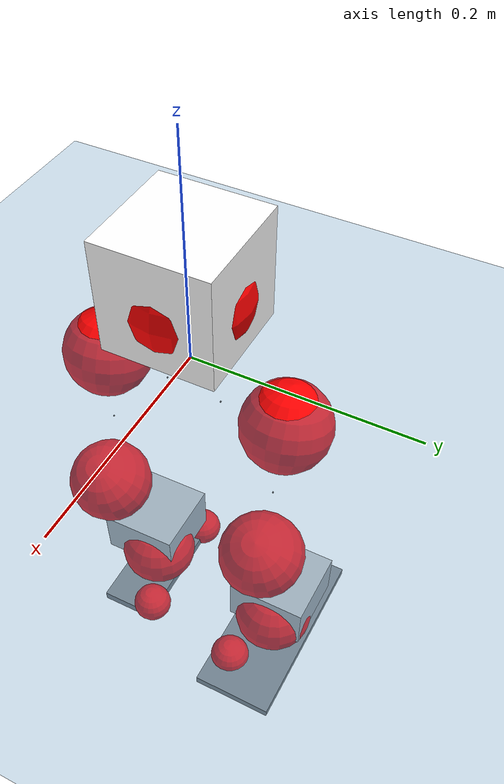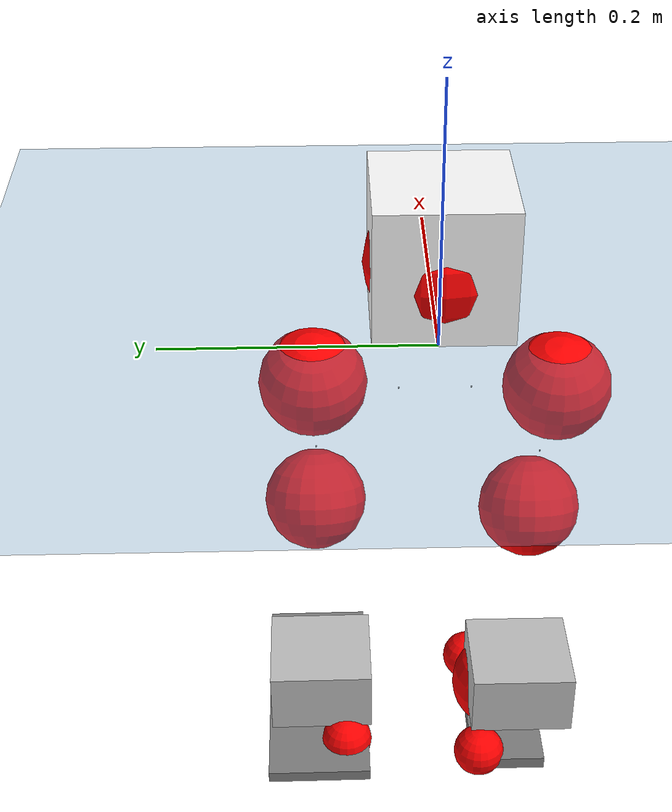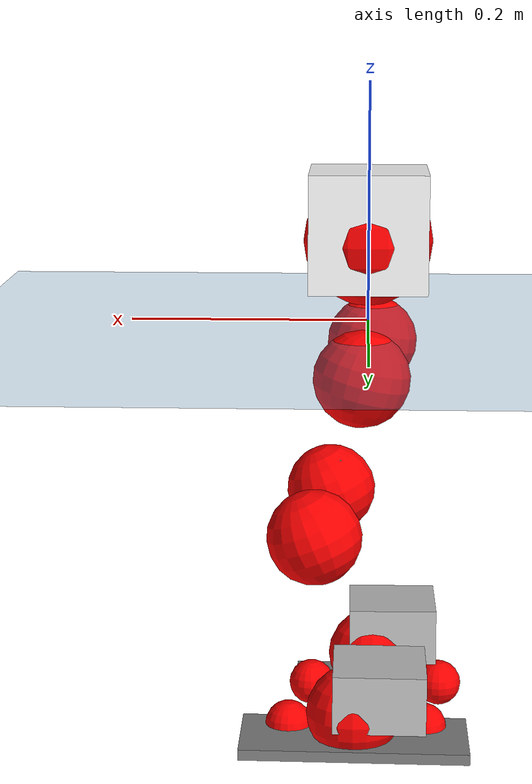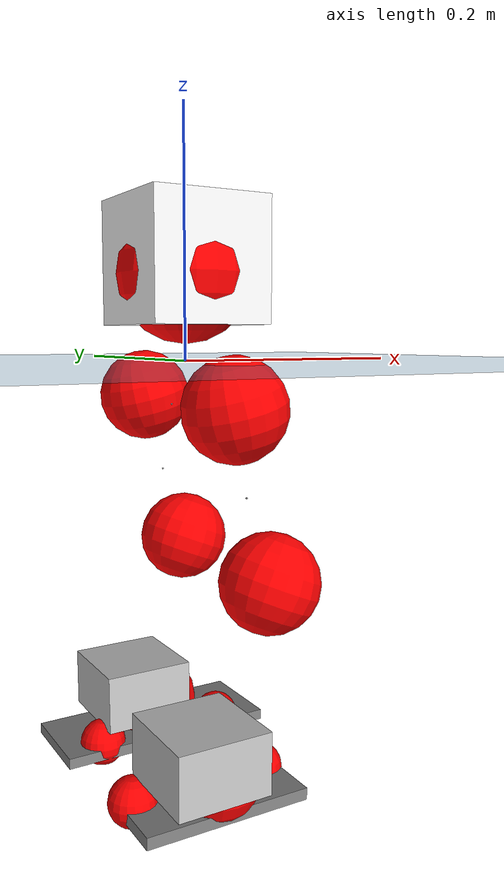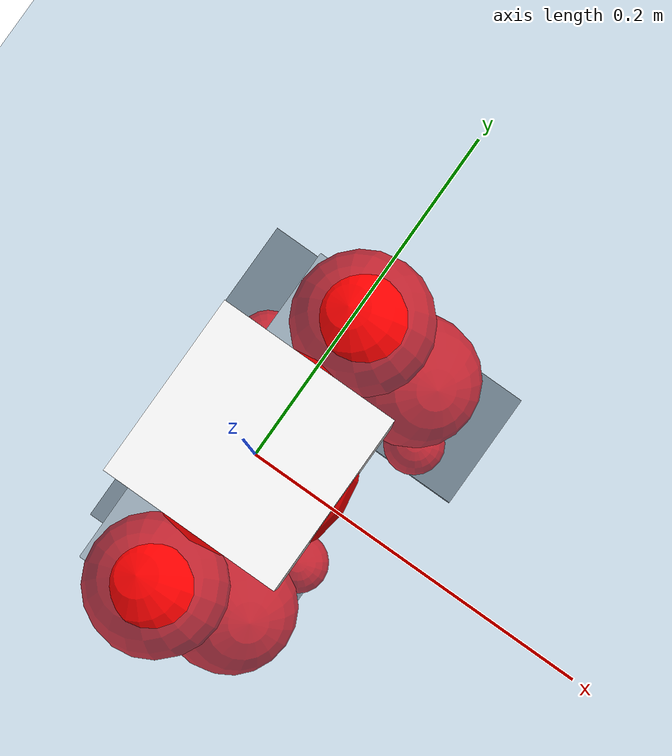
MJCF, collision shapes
<mujoco model="pi_12dof_release_v1">
  <compiler angle="radian" assetdir="assets" balanceinertia="true" inertiafromgeom="false"/>

  <option timestep="0.005" density="1.2" viscosity="2e-05"/>

  <size nkey="1"/>

  <visual>
    <quality shadowsize="8192"/>
    <map shadowclip="0.5"/>
  </visual>

  <default>
    <default class="/">
      <joint armature="0.01" damping="0.01" frictionloss="0.01"/>
      <geom contype="0" conaffinity="0" group="1" solref="-1000 -80"/>
      <site size="0.01 0.005 0.005" group="5"/>
      <general forcelimited="true" biastype="affine" gainprm="20" biasprm="0 -20 -0.5"/>
      <default class="foot">
        <geom size="0.0845 0.036 0.005" type="box" condim="6" group="4" priority="1" friction="0.9 0.2 0.2" solimp="0.015 1 0.005"/>
      </default>
      <default class="reward_collision_sphere">
        <geom group="5" rgba="1 0 0 1"/>
      </default>
    </default>
  </default>

  <asset>
    <texture type="skybox" colorspace="auto" name="//unnamed_texture_0" builtin="gradient" rgb1="0.95 0.95 0.95" rgb2="0.95 0.95 0.95" width="100" height="600"/>
    <texture type="2d" colorspace="auto" name="texplane" builtin="checker" rgb1="0.345 0.575 0.748" rgb2="0.345 0.575 0.748" markrgb="1 1 1" width="512" height="512"/>
    <material name="MatPlane" class="/" texture="texplane" texuniform="true" texrepeat="2 2" specular="0.9"/>
    <mesh name="baselink_1" class="/" file="baselink_1.STL"/>
    <mesh name="r_hip_pitch_link" class="/" file="r_hip_pitch_link.STL"/>
    <mesh name="r_hip_roll_link" class="/" file="r_hip_roll_link.STL"/>
    <mesh name="r_thigh_link" class="/" file="r_thigh_link.STL"/>
    <mesh name="r_calf_link" class="/" file="r_calf_link.STL"/>
    <mesh name="r_ankle_pitch_link" class="/" file="r_ankle_pitch_link.STL"/>
    <mesh name="r_ankle_roll_link" class="/" file="r_ankle_roll_link.STL"/>
    <mesh name="l_hip_pitch_link" class="/" file="l_hip_pitch_link.STL"/>
    <mesh name="l_hip_roll_link" class="/" file="l_hip_roll_link.STL"/>
    <mesh name="l_thigh_link" class="/" file="l_thigh_link.STL"/>
    <mesh name="l_calf_link" class="/" file="l_calf_link.STL"/>
    <mesh name="l_ankle_pitch_link" class="/" file="l_ankle_pitch_link.STL"/>
    <mesh name="l_ankle_roll_link" class="/" file="l_ankle_roll_link.STL"/>
  </asset>

  <worldbody>
    <geom name="floor" class="/" size="100 100 0.125" type="plane" group="0" material="MatPlane"/>
    <light name="toplight_shadow" class="/" pos="0 0 5" dir="0.0990148 0.0990148 -0.990148" type="directional" ambient="0.04 0.04 0.04" diffuse="0.55 0.55 0.55" specular="0.12 0.12 0.12"/>
    <light name="toplight_fill" class="/" pos="0 0 5" dir="0.0990148 0.0990148 -0.990148" type="directional" castshadow="false" ambient="0.04 0.04 0.04" diffuse="0.3 0.3 0.3" specular="0.08 0.08 0.08"/>
    <body name="trunk" pos="0.000426631 0.000275139 -0.0023627" quat="1 -4.8006e-05 -0.00010967 -0.000108582">
      <inertial pos="0.00158243 0.00414234 0.0399661" quat="0.693129 0.0117782 0.0108277 0.720636" mass="2.14269" diaginertia="0.00457078 0.0163433 0.00431867"/>
      <joint name="//unnamed_joint_0" type="free"/>
      <geom name="//unnamed_geom_1" class="/" type="mesh" density="0" rgba="1 1 1 1" mesh="baselink_1"/>
      <geom name="//unnamed_geom_2" class="/" size="0.0492938 0.0492938 0.0492938" pos="0 0 0.0801629" type="box" rgba="1 1 1 1"/>
      <geom name="//unnamed_geom_3" class="reward_collision_sphere" size="0.0542232" pos="0 0 0.0701425"/>
      <site name="imu" class="/" pos="-0.00846509 0.00453121 0.00446446" size="0.00985876"/>
      <camera name="track" class="/" pos="0 -2.22973 0" quat="0.707107 0.707107 0 0" mode="trackcom"/>
      <camera name="ego_camera" class="/" pos="0.0630546 0 0.180366" quat="-0.5 -0.5 0.5 0.5"/>
      <body name="r_hip_pitch_link" pos="-0.00150722 -0.0248499 -0.0321605" quat="0.992135 0.00049149 -0.125174 0.000148929">
        <inertial pos="0.000594389 -0.0599041 0.00213671" quat="-0.0281534 0.724816 -0.0279712 0.687798" mass="0.365548" diaginertia="4.63789e-05 0.000170949 8.58181e-05"/>
        <joint name="r_hip_pitch_joint" class="/" pos="0 0 0" axis="0.0059346 -0.999843 -0.0166805" stiffness="0.0100671" range="-1.74436 1.26206" armature="0.00916803" damping="0" frictionloss="0.00801439"/>
        <geom name="//unnamed_geom_4" class="/" type="mesh" density="0" rgba="0.75294 0.75294 0.75294 1" mesh="r_hip_pitch_link"/>
        <geom name="//unnamed_geom_5" class="/" size="0.000492938 0.000492938 0.000492938" type="box" rgba="0.75294 0.75294 0.75294 1"/>
        <body name="r_hip_roll_link" pos="-0.00262829 -0.0614951 0.00255095" quat="0.999997 0.00175849 0.00184669 -7.49613e-05">
          <inertial pos="0.0023317 -0.00616974 -0.0657143" quat="0.707844 -0.0831058 -0.0902518 0.695633" mass="0.373448" diaginertia="0.000144115 0.00044849 0.000127948"/>
          <joint name="r_hip_roll_joint" class="/" pos="0 0 0" axis="-0.999988 -0.00405178 -0.0027749" range="-0.133399 0.484127" armature="0.00900045" damping="0" frictionloss="0.00904183"/>
          <geom name="//unnamed_geom_6" class="/" type="mesh" density="0" rgba="0.75294 0.75294 0.75294 1" mesh="r_hip_roll_link"/>
          <geom name="//unnamed_geom_7" class="/" size="0.000492938 0.000492938 0.000492938" type="box" rgba="0.75294 0.75294 0.75294 1"/>
          <geom name="//unnamed_geom_8" class="reward_collision_sphere" size="0.039435"/>
          <body name="r_thigh_link" pos="-0.00296543 0.00627987 -0.0676069" quat="0.999999 0.00086853 0.000202545 0.00109153">
            <inertial pos="0.00342926 0.001508 -0.0459806" quat="0.735522 0.677421 -0.0086844 0.00570554" mass="0.110869" diaginertia="5.2464e-05 0.000155517 5.72075e-05"/>
            <joint name="r_thigh_joint" class="/" pos="0 0 0" axis="-0.0132092 0.0046772 -0.999902" stiffness="0.0156651" range="-0.213902 0.679824" armature="0.00870948" damping="0.0293946" frictionloss="0.00780288"/>
            <geom name="//unnamed_geom_9" class="/" type="mesh" density="0" rgba="0.75294 0.75294 0.75294 1" mesh="r_thigh_link"/>
            <geom name="//unnamed_geom_10" class="/" size="0.000492938 0.000492938 0.000492938" type="box" rgba="0.75294 0.75294 0.75294 1"/>
            <body name="r_calf_link" pos="0.00469334 0.0015088 -0.0711817" quat="0.947343 0.000343635 0.320221 0.000648885">
              <inertial pos="-0.00365052 0.00100953 -0.0710979" quat="0.999936 0.00657785 0.00672287 -0.00624467" mass="0.757549" diaginertia="0.00148671 0.00602109 0.000180558"/>
              <joint name="r_calf_joint" class="/" pos="0 0 0" axis="0.0245914 -0.999686 0.00474039" stiffness="0.00546194" range="-1.67002 0.599942" armature="0.00988684" damping="0" frictionloss="0.00819187"/>
              <geom name="//unnamed_geom_11" class="/" type="mesh" density="0" rgba="0.75294 0.75294 0.75294 1" mesh="r_calf_link"/>
              <geom name="//unnamed_geom_12" class="/" size="0.000492938 0.000492938 0.000492938" type="box" rgba="0.75294 0.75294 0.75294 1"/>
              <geom name="//unnamed_geom_13" class="reward_collision_sphere" size="0.039435"/>
              <body name="r_ankle_pitch_link" pos="-0.00188943 0.00715623 -0.137686" quat="0.98003 -0.000172663 -0.19885 -3.98987e-05">
                <inertial pos="0.00486204 0.00400216 -0.00375081" quat="0.0081351 0.709826 -0.0103096 0.704254" mass="0.174615" diaginertia="0.000130367 0.000384435 0.000121824"/>
                <joint name="r_ankle_pitch_joint" class="/" pos="0 0 0" axis="0.012531 -0.999911 0.00449565" range="-1.29103 0.573495" armature="0.00882919" damping="0.0132197" frictionloss="0.00839319"/>
                <geom name="//unnamed_geom_14" class="/" type="mesh" density="0" rgba="0.75294 0.75294 0.75294 1" mesh="r_ankle_pitch_link"/>
                <geom name="//unnamed_geom_15" class="/" size="0.0384492 0.039435 0.0246469" type="box" rgba="0.75294 0.75294 0.75294 1"/>
                <body name="r_ankle_roll_link" pos="0.0597263 0.0107112 -0.00329041" quat="0.999999 -0.000414264 0.00087099 -0.000435941">
                  <inertial pos="-0.0204355 0.00013268 -0.0133986" quat="0.563537 0.435936 0.430502 0.554124" mass="0.465425" diaginertia="0.000435452 0.00165436 0.000267658"/>
                  <joint name="r_ankle_roll_joint" class="/" pos="0 0 0" axis="-0.999563 0.0246138 -0.0163474" range="-0.251708 0.118394" armature="0.00907514" damping="0.00458007" frictionloss="0.0110134"/>
                  <geom name="//unnamed_geom_16" class="/" type="mesh" density="0" rgba="0.75294 0.75294 0.75294 1" mesh="r_ankle_roll_link"/>
                  <geom name="//unnamed_geom_17" class="/" type="mesh" rgba="0.75294 0.75294 0.75294 1" mesh="r_ankle_roll_link"/>
                  <geom name="right_foot" class="foot" size="0.0694658 0.0283759 0.00482842" pos="-0.0428771 0 -0.0440896"/>
                  <geom name="//unnamed_geom_19" class="reward_collision_sphere" size="0.039435" pos="-0.0420364 0 -0.0200407"/>
                  <geom name="//unnamed_geom_20" class="reward_collision_sphere" size="0.0197175" pos="0.0126109 0.0222973 -0.0400814"/>
                  <geom name="//unnamed_geom_21" class="reward_collision_sphere" size="0.0197175" pos="-0.100887 0.0222973 -0.0400814"/>
                  <site name="right_foot" class="foot" pos="-0.0428771 0 -0.0440896" size="0.00985876"/>
                </body>
              </body>
            </body>
          </body>
        </body>
      </body>
      <body name="l_hip_pitch_link" pos="0.00108618 0.0275757 -0.0339851" quat="0.992179 -6.02581e-06 -0.124826 0.000368192">
        <inertial pos="0.00353901 0.0574248 0.000217023" quat="-0.0452363 0.712627 0.0323318 0.699336" mass="0.387787" diaginertia="5.09659e-05 0.000173894 0.000100064"/>
        <joint name="l_hip_pitch_joint" class="/" pos="0 0 0" axis="0.00628231 0.999959 0.00654565" range="-1.19875 1.70173" armature="0.00968311" damping="0.0180922" frictionloss="0.0102206"/>
        <geom name="//unnamed_geom_22" class="/" type="mesh" density="0" rgba="0.75294 0.75294 0.75294 1" mesh="l_hip_pitch_link"/>
        <geom name="//unnamed_geom_23" class="/" size="0.000492938 0.000492938 0.000492938" type="box" rgba="0.75294 0.75294 0.75294 1"/>
        <body name="l_hip_roll_link" pos="0.00437651 0.0617892 0.00342683" quat="0.999998 -0.00167277 -0.000294379 -0.000731615">
          <inertial pos="0.00401917 -0.00535425 -0.0595029" quat="0.702897 -0.0765068 -0.0740078 0.703281" mass="0.392164" diaginertia="0.0001382 0.000480825 0.000124798"/>
          <joint name="l_hip_roll_joint" class="/" pos="0 0 0" axis="-0.999993 -0.00211685 -0.00323578" stiffness="0.00569872" range="-0.499042 0.149842" armature="0.00762964" damping="0.000275735" frictionloss="0.00949639"/>
          <geom name="//unnamed_geom_24" class="/" type="mesh" density="0" rgba="0.75294 0.75294 0.75294 1" mesh="l_hip_roll_link"/>
          <geom name="//unnamed_geom_25" class="/" size="0.000492938 0.000492938 0.000492938" type="box" rgba="0.75294 0.75294 0.75294 1"/>
          <geom name="//unnamed_geom_26" class="reward_collision_sphere" size="0.039435"/>
          <body name="l_thigh_link" pos="-0.00100718 -0.00138378 -0.0701166" quat="1 -9.62203e-05 -0.000102872 0.000373802">
            <inertial pos="0.000773812 -0.00329769 -0.051126" quat="0.675987 0.736893 0.00473556 -0.00262443" mass="0.107832" diaginertia="5.45354e-05 0.0001698 6.13163e-05"/>
            <joint name="l_thigh_joint" class="/" pos="0 0 0" axis="-0.000846613 0.00450957 -0.999989" range="-0.561223 0.336092" armature="0.00941228" damping="0.0135077" frictionloss="0.0109854"/>
            <geom name="//unnamed_geom_27" class="/" type="mesh" density="0" rgba="0.75294 0.75294 0.75294 1" mesh="l_thigh_link"/>
            <geom name="//unnamed_geom_28" class="/" size="0.000492938 0.000492938 0.000492938" type="box" rgba="0.75294 0.75294 0.75294 1"/>
            <body name="l_calf_link" pos="0.00442457 0.00161989 -0.067908" quat="0.948336 -0.00141 0.317262 0.000856068">
              <inertial pos="0.00183907 0.00106967 -0.0748972" quat="0.999976 0.00584797 -0.00133354 0.00332964" mass="0.767997" diaginertia="0.00146405 0.00611311 0.000161504"/>
              <joint name="l_calf_joint" class="/" pos="0 0 0" axis="-0.00163644 0.999998 -0.00119319" stiffness="0.0237944" range="-0.697696 1.61198" armature="0.00909974" damping="0.00445519" frictionloss="0.0110673"/>
              <geom name="//unnamed_geom_29" class="/" type="mesh" density="0" rgba="0.75294 0.75294 0.75294 1" mesh="l_calf_link"/>
              <geom name="//unnamed_geom_30" class="/" size="0.000492938 0.000492938 0.000492938" type="box" rgba="0.75294 0.75294 0.75294 1"/>
              <geom name="//unnamed_geom_31" class="reward_collision_sphere" size="0.039435"/>
              <body name="l_ankle_pitch_link" pos="0.000466953 -0.00113349 -0.142646" quat="0.980038 -0.000441296 -0.198807 -0.000734118">
                <inertial pos="0.00299279 0.000125385 -0.0029063" quat="-0.0127903 0.709658 0.00300095 0.704423" mass="0.179093" diaginertia="0.000130262 0.000382073 0.000125072"/>
                <joint name="l_ankle_pitch_joint" class="/" pos="0 0 0" axis="0.000962518 0.999968 -0.00789803" range="-0.567754 1.31022" armature="0.0112337" damping="0" frictionloss="0.00976605"/>
                <geom name="//unnamed_geom_32" class="/" type="mesh" density="0" rgba="0.75294 0.75294 0.75294 1" mesh="l_ankle_pitch_link"/>
                <geom name="//unnamed_geom_33" class="/" size="0.0384492 0.039435 0.0246469" type="box" rgba="0.75294 0.75294 0.75294 1"/>
                <body name="l_ankle_roll_link" pos="0.0632138 0.00254537 0.000785667" quat="1 -0.000232871 -0.000246951 -0.000473396">
                  <inertial pos="-0.0212987 0.000818348 -0.0146208" quat="0.559894 0.430151 0.434549 0.559156" mass="0.493772" diaginertia="0.000488266 0.00179881 0.000279419"/>
                  <joint name="l_ankle_roll_joint" class="/" pos="0 0 0" axis="-0.999999 0.000492256 -0.00140869" range="-0.244704 0.143142" armature="0.00883992" damping="0.0230236" frictionloss="0.00882647"/>
                  <geom name="//unnamed_geom_34" class="/" type="mesh" density="0" rgba="0.75294 0.75294 0.75294 1" mesh="l_ankle_roll_link"/>
                  <geom name="//unnamed_geom_35" class="/" type="mesh" rgba="0.75294 0.75294 0.75294 1" mesh="l_ankle_roll_link"/>
                  <geom name="left_foot" class="foot" size="0.0950808 0.0396738 0.00451139" pos="-0.0428771 0 -0.0440896"/>
                  <geom name="//unnamed_geom_37" class="reward_collision_sphere" size="0.039435" pos="-0.0420364 0 -0.0200407"/>
                  <geom name="//unnamed_geom_38" class="reward_collision_sphere" size="0.0197175" pos="0.0126109 -0.0222973 -0.0400814"/>
                  <geom name="//unnamed_geom_39" class="reward_collision_sphere" size="0.0197175" pos="-0.100887 -0.0222973 -0.0400814"/>
                  <site name="left_foot" class="foot" pos="-0.0428771 0 -0.0440896" size="0.00985876"/>
                </body>
              </body>
            </body>
          </body>
        </body>
      </body>
    </body>
  </worldbody>

  <contact>
    <pair class="/" geom1="floor" geom2="right_foot" name="//unnamed_contact_1"/>
    <pair class="/" geom1="floor" geom2="left_foot" name="//unnamed_contact_0"/>
  </contact>

  <actuator>
    <general name="r_hip_pitch_joint" class="/" joint="r_hip_pitch_joint" forcerange="-19.3585 19.3585" gainprm="19.087" biasprm="0 -19.087 -0.54386"/>
    <general name="r_hip_roll_joint" class="/" joint="r_hip_roll_joint" forcerange="-16.9099 16.9099" gainprm="19.087" biasprm="0 -19.087 -0.54386"/>
    <general name="r_thigh_joint" class="/" joint="r_thigh_joint" forcerange="-20.3584 20.3584" gainprm="19.087" biasprm="0 -19.087 -0.54386"/>
    <general name="r_calf_joint" class="/" joint="r_calf_joint" forcerange="-21.5373 21.5373" gainprm="19.087" biasprm="0 -19.087 -0.54386"/>
    <general name="r_ankle_pitch_joint" class="/" joint="r_ankle_pitch_joint" forcerange="-20.8899 20.8899" gainprm="19.087" biasprm="0 -19.087 -0.54386"/>
    <general name="r_ankle_roll_joint" class="/" joint="r_ankle_roll_joint" forcerange="-19.6339 19.6339" gainprm="19.087" biasprm="0 -19.087 -0.54386"/>
    <general name="l_hip_pitch_joint" class="/" joint="l_hip_pitch_joint" forcerange="-21.9284 21.9284" gainprm="19.087" biasprm="0 -19.087 -0.54386"/>
    <general name="l_hip_roll_joint" class="/" joint="l_hip_roll_joint" forcerange="-21.3797 21.3797" gainprm="19.087" biasprm="0 -19.087 -0.54386"/>
    <general name="l_thigh_joint" class="/" joint="l_thigh_joint" forcerange="-21.1158 21.1158" gainprm="19.087" biasprm="0 -19.087 -0.54386"/>
    <general name="l_calf_joint" class="/" joint="l_calf_joint" forcerange="-19.85 19.85" gainprm="19.087" biasprm="0 -19.087 -0.54386"/>
    <general name="l_ankle_pitch_joint" class="/" joint="l_ankle_pitch_joint" forcerange="-20.3586 20.3586" gainprm="19.087" biasprm="0 -19.087 -0.54386"/>
    <general name="l_ankle_roll_joint" class="/" joint="l_ankle_roll_joint" forcerange="-21.4117 21.4117" gainprm="19.087" biasprm="0 -19.087 -0.54386"/>
  </actuator>

  <sensor>
    <gyro site="imu" name="imu_angular_velocity"/>
    <velocimeter site="imu" name="imu_linear_velocity"/>
    <framelinvel objtype="site" objname="left_foot" name="left_foot_global_linear_velocity"/>
    <framelinvel objtype="site" objname="right_foot" name="right_foot_global_linear_velocity"/>
  </sensor>

  <keyframe>
    <key name="home" qpos="0 0 0.291 1 0 0 0 0.4 0 0 -0.8 0.4 0 -0.4 0 0 0.8 -0.4 0"/>
  </keyframe>
</mujoco>
